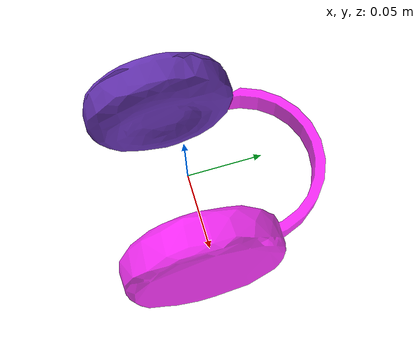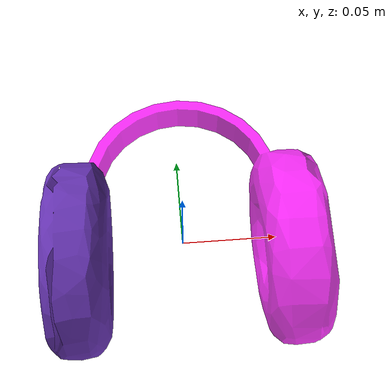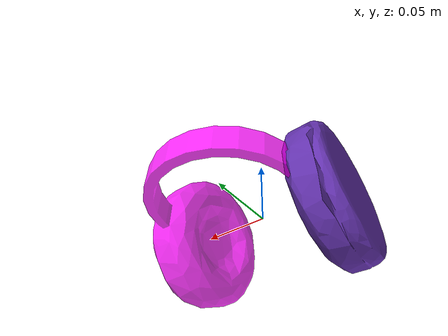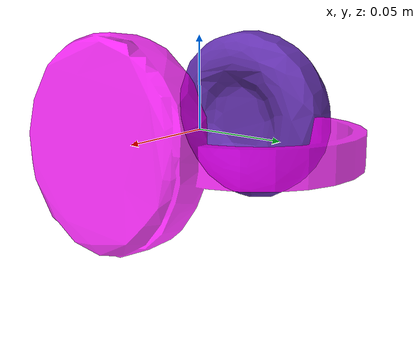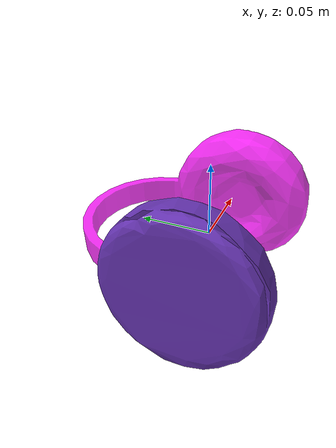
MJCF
<?xml version="1.0" encoding="utf-8"?>
<mujoco model="top_watertight_tiny">

  <asset>

    <mesh file="top_watertight_tiny.obj"/>

    <mesh file="top_watertight_tiny_collision_0.obj"/>

    <mesh file="top_watertight_tiny_collision_1.obj"/>

    <mesh file="top_watertight_tiny_collision_2.obj"/>

    <mesh file="top_watertight_tiny_collision_3.obj"/>

    <mesh file="top_watertight_tiny_collision_4.obj"/>

    <mesh file="top_watertight_tiny_collision_5.obj"/>

    <mesh file="top_watertight_tiny_collision_6.obj"/>

    <mesh file="top_watertight_tiny_collision_7.obj"/>

    <mesh file="top_watertight_tiny_collision_8.obj"/>

    <mesh file="top_watertight_tiny_collision_9.obj"/>

    <mesh file="top_watertight_tiny_collision_10.obj"/>

    <mesh file="top_watertight_tiny_collision_11.obj"/>

    <mesh file="top_watertight_tiny_collision_12.obj"/>

    <mesh file="top_watertight_tiny_collision_13.obj"/>

    <mesh file="top_watertight_tiny_collision_14.obj"/>

    <mesh file="top_watertight_tiny_collision_15.obj"/>

    <mesh file="top_watertight_tiny_collision_16.obj"/>

    <mesh file="top_watertight_tiny_collision_17.obj"/>

    <mesh file="top_watertight_tiny_collision_18.obj"/>

    <mesh file="top_watertight_tiny_collision_19.obj"/>

    <mesh file="top_watertight_tiny_collision_20.obj"/>

    <mesh file="top_watertight_tiny_collision_21.obj"/>

    <mesh file="top_watertight_tiny_collision_22.obj"/>

    <mesh file="top_watertight_tiny_collision_23.obj"/>

    <mesh file="top_watertight_tiny_collision_24.obj"/>

    <mesh file="top_watertight_tiny_collision_25.obj"/>

    <mesh file="top_watertight_tiny_collision_26.obj"/>

    <mesh file="top_watertight_tiny_collision_27.obj"/>

    <mesh file="top_watertight_tiny_collision_28.obj"/>

    <mesh file="top_watertight_tiny_collision_29.obj"/>

    <mesh file="top_watertight_tiny_collision_30.obj"/>

    <mesh file="top_watertight_tiny_collision_31.obj"/>

    <mesh file="top_watertight_tiny_collision_32.obj"/>

    <mesh file="top_watertight_tiny_collision_33.obj"/>

    <mesh file="top_watertight_tiny_collision_34.obj"/>

    <mesh file="top_watertight_tiny_collision_35.obj"/>

    <mesh file="top_watertight_tiny_collision_36.obj"/>

    <mesh file="top_watertight_tiny_collision_37.obj"/>

    <mesh file="top_watertight_tiny_collision_38.obj"/>

    <mesh file="top_watertight_tiny_collision_39.obj"/>

    <mesh file="top_watertight_tiny_collision_40.obj"/>

    <mesh file="top_watertight_tiny_collision_41.obj"/>

    <mesh file="top_watertight_tiny_collision_42.obj"/>

    <mesh file="top_watertight_tiny_collision_43.obj"/>

    <mesh file="top_watertight_tiny_collision_44.obj"/>

    <mesh file="top_watertight_tiny_collision_45.obj"/>

    <mesh file="top_watertight_tiny_collision_46.obj"/>

    <mesh file="top_watertight_tiny_collision_47.obj"/>

    <mesh file="top_watertight_tiny_collision_48.obj"/>

    <mesh file="top_watertight_tiny_collision_49.obj"/>

    <mesh file="top_watertight_tiny_collision_50.obj"/>

    <mesh file="top_watertight_tiny_collision_51.obj"/>

    <mesh file="top_watertight_tiny_collision_52.obj"/>

    <mesh file="top_watertight_tiny_collision_53.obj"/>

    <mesh file="top_watertight_tiny_collision_54.obj"/>

    <mesh file="top_watertight_tiny_collision_55.obj"/>

    <mesh file="top_watertight_tiny_collision_56.obj"/>

    <mesh file="top_watertight_tiny_collision_57.obj"/>

    <mesh file="top_watertight_tiny_collision_58.obj"/>

    <mesh file="top_watertight_tiny_collision_59.obj"/>

    <mesh file="top_watertight_tiny_collision_60.obj"/>

    <mesh file="top_watertight_tiny_collision_61.obj"/>

    <mesh file="top_watertight_tiny_collision_62.obj"/>

    <mesh file="top_watertight_tiny_collision_63.obj"/>

    <mesh file="top_watertight_tiny_collision_64.obj"/>

    <mesh file="top_watertight_tiny_collision_65.obj"/>

    <mesh file="top_watertight_tiny_collision_66.obj"/>

    <mesh file="top_watertight_tiny_collision_67.obj"/>

    <mesh file="top_watertight_tiny_collision_68.obj"/>

    <mesh file="top_watertight_tiny_collision_69.obj"/>

    <mesh file="top_watertight_tiny_collision_70.obj"/>

    <mesh file="top_watertight_tiny_collision_71.obj"/>

    <mesh file="top_watertight_tiny_collision_72.obj"/>

    <mesh file="top_watertight_tiny_collision_73.obj"/>

    <mesh file="top_watertight_tiny_collision_74.obj"/>

    <mesh file="top_watertight_tiny_collision_75.obj"/>

    <mesh file="top_watertight_tiny_collision_76.obj"/>

    <mesh file="top_watertight_tiny_collision_77.obj"/>

    <mesh file="top_watertight_tiny_collision_78.obj"/>

    <mesh file="top_watertight_tiny_collision_79.obj"/>

    <mesh file="top_watertight_tiny_collision_80.obj"/>

    <mesh file="top_watertight_tiny_collision_81.obj"/>

    <mesh file="top_watertight_tiny_collision_82.obj"/>

    <mesh file="top_watertight_tiny_collision_83.obj"/>

    <mesh file="top_watertight_tiny_collision_84.obj"/>

    <mesh file="top_watertight_tiny_collision_85.obj"/>

    <mesh file="top_watertight_tiny_collision_86.obj"/>

    <mesh file="top_watertight_tiny_collision_87.obj"/>

    <mesh file="top_watertight_tiny_collision_88.obj"/>

    <mesh file="top_watertight_tiny_collision_89.obj"/>

    <mesh file="top_watertight_tiny_collision_90.obj"/>

    <mesh file="top_watertight_tiny_collision_91.obj"/>

    <mesh file="top_watertight_tiny_collision_92.obj"/>

    <mesh file="top_watertight_tiny_collision_93.obj"/>

    <mesh file="top_watertight_tiny_collision_94.obj"/>

    <mesh file="top_watertight_tiny_collision_95.obj"/>

    <mesh file="top_watertight_tiny_collision_96.obj"/>

    <mesh file="top_watertight_tiny_collision_97.obj"/>

    <mesh file="top_watertight_tiny_collision_98.obj"/>

    <mesh file="top_watertight_tiny_collision_99.obj"/>

    <mesh file="top_watertight_tiny_collision_100.obj"/>

    <mesh file="top_watertight_tiny_collision_101.obj"/>

    <mesh file="bottom_watertight_tiny.obj"/>

    <mesh file="bottom_watertight_tiny_collision_0.obj"/>

    <mesh file="bottom_watertight_tiny_collision_1.obj"/>

    <mesh file="bottom_watertight_tiny_collision_2.obj"/>

    <mesh file="bottom_watertight_tiny_collision_3.obj"/>

    <mesh file="bottom_watertight_tiny_collision_4.obj"/>

    <mesh file="bottom_watertight_tiny_collision_5.obj"/>

    <mesh file="bottom_watertight_tiny_collision_6.obj"/>

    <mesh file="bottom_watertight_tiny_collision_7.obj"/>

    <mesh file="bottom_watertight_tiny_collision_8.obj"/>

    <mesh file="bottom_watertight_tiny_collision_9.obj"/>

    <mesh file="bottom_watertight_tiny_collision_10.obj"/>

    <mesh file="bottom_watertight_tiny_collision_11.obj"/>

    <mesh file="bottom_watertight_tiny_collision_12.obj"/>

    <mesh file="bottom_watertight_tiny_collision_13.obj"/>

    <mesh file="bottom_watertight_tiny_collision_14.obj"/>

    <mesh file="bottom_watertight_tiny_collision_15.obj"/>

    <mesh file="bottom_watertight_tiny_collision_16.obj"/>

    <mesh file="bottom_watertight_tiny_collision_17.obj"/>

    <mesh file="bottom_watertight_tiny_collision_18.obj"/>

    <mesh file="bottom_watertight_tiny_collision_19.obj"/>

    <mesh file="bottom_watertight_tiny_collision_20.obj"/>

    <mesh file="bottom_watertight_tiny_collision_21.obj"/>

    <mesh file="bottom_watertight_tiny_collision_22.obj"/>

    <mesh file="bottom_watertight_tiny_collision_23.obj"/>

    <mesh file="bottom_watertight_tiny_collision_24.obj"/>

    <mesh file="bottom_watertight_tiny_collision_25.obj"/>

    <mesh file="bottom_watertight_tiny_collision_26.obj"/>

    <mesh file="bottom_watertight_tiny_collision_27.obj"/>

    <mesh file="bottom_watertight_tiny_collision_28.obj"/>

    <mesh file="bottom_watertight_tiny_collision_29.obj"/>

    <mesh file="bottom_watertight_tiny_collision_30.obj"/>

    <mesh file="bottom_watertight_tiny_collision_31.obj"/>

    <mesh file="bottom_watertight_tiny_collision_32.obj"/>

    <mesh file="bottom_watertight_tiny_collision_33.obj"/>

    <mesh file="bottom_watertight_tiny_collision_34.obj"/>

    <mesh file="bottom_watertight_tiny_collision_35.obj"/>

    <mesh file="bottom_watertight_tiny_collision_36.obj"/>

    <mesh file="bottom_watertight_tiny_collision_37.obj"/>

    <mesh file="bottom_watertight_tiny_collision_38.obj"/>

    <mesh file="bottom_watertight_tiny_collision_39.obj"/>

    <mesh file="bottom_watertight_tiny_collision_40.obj"/>

    <mesh file="bottom_watertight_tiny_collision_41.obj"/>

    <mesh file="bottom_watertight_tiny_collision_42.obj"/>

    <mesh file="bottom_watertight_tiny_collision_43.obj"/>

    <mesh file="bottom_watertight_tiny_collision_44.obj"/>

    <mesh file="bottom_watertight_tiny_collision_45.obj"/>

    <mesh file="bottom_watertight_tiny_collision_46.obj"/>

    <mesh file="bottom_watertight_tiny_collision_47.obj"/>

    <mesh file="bottom_watertight_tiny_collision_48.obj"/>

    <mesh file="bottom_watertight_tiny_collision_49.obj"/>

    <mesh file="bottom_watertight_tiny_collision_50.obj"/>

    <mesh file="bottom_watertight_tiny_collision_51.obj"/>

    <mesh file="bottom_watertight_tiny_collision_52.obj"/>

    <mesh file="bottom_watertight_tiny_collision_53.obj"/>

    <mesh file="bottom_watertight_tiny_collision_54.obj"/>

    <mesh file="bottom_watertight_tiny_collision_55.obj"/>

    <mesh file="bottom_watertight_tiny_collision_56.obj"/>

    <mesh file="bottom_watertight_tiny_collision_57.obj"/>

    <mesh file="bottom_watertight_tiny_collision_58.obj"/>

    <mesh file="bottom_watertight_tiny_collision_59.obj"/>

    <mesh file="bottom_watertight_tiny_collision_60.obj"/>

    <mesh file="bottom_watertight_tiny_collision_61.obj"/>

    <mesh file="bottom_watertight_tiny_collision_62.obj"/>

    <mesh file="bottom_watertight_tiny_collision_63.obj"/>

    <mesh file="bottom_watertight_tiny_collision_64.obj"/>

    <mesh file="bottom_watertight_tiny_collision_65.obj"/>

    <mesh file="bottom_watertight_tiny_collision_66.obj"/>

    <mesh file="bottom_watertight_tiny_collision_67.obj"/>

    <mesh file="bottom_watertight_tiny_collision_68.obj"/>

    <mesh file="bottom_watertight_tiny_collision_69.obj"/>

    <mesh file="bottom_watertight_tiny_collision_70.obj"/>

    <mesh file="bottom_watertight_tiny_collision_71.obj"/>

    <mesh file="bottom_watertight_tiny_collision_72.obj"/>

    <mesh file="bottom_watertight_tiny_collision_73.obj"/>

    <mesh file="bottom_watertight_tiny_collision_74.obj"/>

    <mesh file="bottom_watertight_tiny_collision_75.obj"/>

    <mesh file="bottom_watertight_tiny_collision_76.obj"/>

  </asset>

  <worldbody>

    <body name="top_watertight_tiny">

      <freejoint/>

      <geom mesh="top_watertight_tiny" group="2" type="mesh" rgba="0.4 0.2 0.7 1" contype="0" conaffinity="0" solimp="0.90 0.95 0.001" solref="0.02 1.0" density="100" friction="0.95 0.4 0.3"/>

      <geom mesh="top_watertight_tiny_collision_0" rgba="0.766062738003448 0.5244748164000888 0.32984674510797074 1" group="3" type="mesh" solimp="0.90 0.95 0.001" solref="0.02 1.0" density="100" friction="0.95 0.4 0.3"/>

      <geom mesh="top_watertight_tiny_collision_1" rgba="0.40572860502263985 0.2552929073115291 0.11887064724577245 1" group="3" type="mesh" solimp="0.90 0.95 0.001" solref="0.02 1.0" density="100" friction="0.95 0.4 0.3"/>

      <geom mesh="top_watertight_tiny_collision_2" rgba="0.9670536360694395 0.08168789633020856 0.6553193699167701 1" group="3" type="mesh" solimp="0.90 0.95 0.001" solref="0.02 1.0" density="100" friction="0.95 0.4 0.3"/>

      <geom mesh="top_watertight_tiny_collision_3" rgba="0.9840877347133452 0.27295959893743105 0.29552680026406775 1" group="3" type="mesh" solimp="0.90 0.95 0.001" solref="0.02 1.0" density="100" friction="0.95 0.4 0.3"/>

      <geom mesh="top_watertight_tiny_collision_4" rgba="0.5039278483407091 0.2234415807497847 0.10487740700408654 1" group="3" type="mesh" solimp="0.90 0.95 0.001" solref="0.02 1.0" density="100" friction="0.95 0.4 0.3"/>

      <geom mesh="top_watertight_tiny_collision_5" rgba="0.2505801559534395 0.017056400771879976 0.2974394566987735 1" group="3" type="mesh" solimp="0.90 0.95 0.001" solref="0.02 1.0" density="100" friction="0.95 0.4 0.3"/>

      <geom mesh="top_watertight_tiny_collision_6" rgba="0.7364644318811023 0.9440554966382596 0.5542062362356843 1" group="3" type="mesh" solimp="0.90 0.95 0.001" solref="0.02 1.0" density="100" friction="0.95 0.4 0.3"/>

      <geom mesh="top_watertight_tiny_collision_7" rgba="0.81042568269233 0.8524555680318481 0.551307093401827 1" group="3" type="mesh" solimp="0.90 0.95 0.001" solref="0.02 1.0" density="100" friction="0.95 0.4 0.3"/>

      <geom mesh="top_watertight_tiny_collision_8" rgba="0.18520892535198963 0.6510053850307842 0.6937170622605244 1" group="3" type="mesh" solimp="0.90 0.95 0.001" solref="0.02 1.0" density="100" friction="0.95 0.4 0.3"/>

      <geom mesh="top_watertight_tiny_collision_9" rgba="0.03982199266981146 0.7400070166337089 0.45730844449198926 1" group="3" type="mesh" solimp="0.90 0.95 0.001" solref="0.02 1.0" density="100" friction="0.95 0.4 0.3"/>

      <geom mesh="top_watertight_tiny_collision_10" rgba="0.12011622826820911 0.9544589102710332 0.311416676180602 1" group="3" type="mesh" solimp="0.90 0.95 0.001" solref="0.02 1.0" density="100" friction="0.95 0.4 0.3"/>

      <geom mesh="top_watertight_tiny_collision_11" rgba="0.16702232658001825 0.4874663874547335 0.030343762648396444 1" group="3" type="mesh" solimp="0.90 0.95 0.001" solref="0.02 1.0" density="100" friction="0.95 0.4 0.3"/>

      <geom mesh="top_watertight_tiny_collision_12" rgba="0.925926706614749 0.9401390433322846 0.9877394157742075 1" group="3" type="mesh" solimp="0.90 0.95 0.001" solref="0.02 1.0" density="100" friction="0.95 0.4 0.3"/>

      <geom mesh="top_watertight_tiny_collision_13" rgba="0.4638442382927238 0.38000940794839355 0.6398130340126214 1" group="3" type="mesh" solimp="0.90 0.95 0.001" solref="0.02 1.0" density="100" friction="0.95 0.4 0.3"/>

      <geom mesh="top_watertight_tiny_collision_14" rgba="0.07637061457570749 0.9013816749399639 0.9460388206459165 1" group="3" type="mesh" solimp="0.90 0.95 0.001" solref="0.02 1.0" density="100" friction="0.95 0.4 0.3"/>

      <geom mesh="top_watertight_tiny_collision_15" rgba="0.7905031409925123 0.7455078519697366 0.10978817530490736 1" group="3" type="mesh" solimp="0.90 0.95 0.001" solref="0.02 1.0" density="100" friction="0.95 0.4 0.3"/>

      <geom mesh="top_watertight_tiny_collision_16" rgba="0.2528065189690465 0.502162637809156 0.5364191260206278 1" group="3" type="mesh" solimp="0.90 0.95 0.001" solref="0.02 1.0" density="100" friction="0.95 0.4 0.3"/>

      <geom mesh="top_watertight_tiny_collision_17" rgba="0.48266309587370504 0.009664005804444264 0.8107484817534605 1" group="3" type="mesh" solimp="0.90 0.95 0.001" solref="0.02 1.0" density="100" friction="0.95 0.4 0.3"/>

      <geom mesh="top_watertight_tiny_collision_18" rgba="0.6902023715456127 0.4495307690829504 0.3946432736682073 1" group="3" type="mesh" solimp="0.90 0.95 0.001" solref="0.02 1.0" density="100" friction="0.95 0.4 0.3"/>

      <geom mesh="top_watertight_tiny_collision_19" rgba="0.07117386187144537 0.04658704767706112 0.22328621161542694 1" group="3" type="mesh" solimp="0.90 0.95 0.001" solref="0.02 1.0" density="100" friction="0.95 0.4 0.3"/>

      <geom mesh="top_watertight_tiny_collision_20" rgba="0.5648737339010019 0.05794306002505101 0.23502416672065185 1" group="3" type="mesh" solimp="0.90 0.95 0.001" solref="0.02 1.0" density="100" friction="0.95 0.4 0.3"/>

      <geom mesh="top_watertight_tiny_collision_21" rgba="0.4396478908557834 0.8404456798825608 0.014870428479449305 1" group="3" type="mesh" solimp="0.90 0.95 0.001" solref="0.02 1.0" density="100" friction="0.95 0.4 0.3"/>

      <geom mesh="top_watertight_tiny_collision_22" rgba="0.9880012464197002 0.842399611553681 0.10380369623136565 1" group="3" type="mesh" solimp="0.90 0.95 0.001" solref="0.02 1.0" density="100" friction="0.95 0.4 0.3"/>

      <geom mesh="top_watertight_tiny_collision_23" rgba="0.19102361502996745 0.5213664725966956 0.6555746861004302 1" group="3" type="mesh" solimp="0.90 0.95 0.001" solref="0.02 1.0" density="100" friction="0.95 0.4 0.3"/>

      <geom mesh="top_watertight_tiny_collision_24" rgba="0.31610183698002714 0.48811532062518237 0.9643588175072634 1" group="3" type="mesh" solimp="0.90 0.95 0.001" solref="0.02 1.0" density="100" friction="0.95 0.4 0.3"/>

      <geom mesh="top_watertight_tiny_collision_25" rgba="0.49521002458138874 0.01393613260356541 0.9743457692730925 1" group="3" type="mesh" solimp="0.90 0.95 0.001" solref="0.02 1.0" density="100" friction="0.95 0.4 0.3"/>

      <geom mesh="top_watertight_tiny_collision_26" rgba="0.21657272384571646 0.09261496547618697 0.18577644264752524 1" group="3" type="mesh" solimp="0.90 0.95 0.001" solref="0.02 1.0" density="100" friction="0.95 0.4 0.3"/>

      <geom mesh="top_watertight_tiny_collision_27" rgba="0.7279818359824315 0.5998763470111916 0.9096653241005807 1" group="3" type="mesh" solimp="0.90 0.95 0.001" solref="0.02 1.0" density="100" friction="0.95 0.4 0.3"/>

      <geom mesh="top_watertight_tiny_collision_28" rgba="0.28053288448605607 0.828501973409408 0.7963958720897343 1" group="3" type="mesh" solimp="0.90 0.95 0.001" solref="0.02 1.0" density="100" friction="0.95 0.4 0.3"/>

      <geom mesh="top_watertight_tiny_collision_29" rgba="0.2682587504127536 0.40919023378275 0.1052492031150356 1" group="3" type="mesh" solimp="0.90 0.95 0.001" solref="0.02 1.0" density="100" friction="0.95 0.4 0.3"/>

      <geom mesh="top_watertight_tiny_collision_30" rgba="0.031891019959443656 0.4917932020808724 0.7194528210370378 1" group="3" type="mesh" solimp="0.90 0.95 0.001" solref="0.02 1.0" density="100" friction="0.95 0.4 0.3"/>

      <geom mesh="top_watertight_tiny_collision_31" rgba="0.7061310549969372 0.11331235357441083 0.4423315314571755 1" group="3" type="mesh" solimp="0.90 0.95 0.001" solref="0.02 1.0" density="100" friction="0.95 0.4 0.3"/>

      <geom mesh="top_watertight_tiny_collision_32" rgba="0.25550175254240803 0.915314137507694 0.6072643730984377 1" group="3" type="mesh" solimp="0.90 0.95 0.001" solref="0.02 1.0" density="100" friction="0.95 0.4 0.3"/>

      <geom mesh="top_watertight_tiny_collision_33" rgba="0.36076488262306394 0.737822019497504 0.4257168902785081 1" group="3" type="mesh" solimp="0.90 0.95 0.001" solref="0.02 1.0" density="100" friction="0.95 0.4 0.3"/>

      <geom mesh="top_watertight_tiny_collision_34" rgba="0.1961613336822734 0.9885047819959446 0.0930364469811189 1" group="3" type="mesh" solimp="0.90 0.95 0.001" solref="0.02 1.0" density="100" friction="0.95 0.4 0.3"/>

      <geom mesh="top_watertight_tiny_collision_35" rgba="0.08386802840526597 0.6334524043926351 0.4466166407382841 1" group="3" type="mesh" solimp="0.90 0.95 0.001" solref="0.02 1.0" density="100" friction="0.95 0.4 0.3"/>

      <geom mesh="top_watertight_tiny_collision_36" rgba="0.7118508177444862 0.04546626271104526 0.9779500720098097 1" group="3" type="mesh" solimp="0.90 0.95 0.001" solref="0.02 1.0" density="100" friction="0.95 0.4 0.3"/>

      <geom mesh="top_watertight_tiny_collision_37" rgba="0.622769938492074 0.3632181524992102 0.3830075725089892 1" group="3" type="mesh" solimp="0.90 0.95 0.001" solref="0.02 1.0" density="100" friction="0.95 0.4 0.3"/>

      <geom mesh="top_watertight_tiny_collision_38" rgba="0.5934329483810608 0.3765499892055243 0.38523918167735816 1" group="3" type="mesh" solimp="0.90 0.95 0.001" solref="0.02 1.0" density="100" friction="0.95 0.4 0.3"/>

      <geom mesh="top_watertight_tiny_collision_39" rgba="0.5434592996019427 0.5391082453240993 0.6302395043787604 1" group="3" type="mesh" solimp="0.90 0.95 0.001" solref="0.02 1.0" density="100" friction="0.95 0.4 0.3"/>

      <geom mesh="top_watertight_tiny_collision_40" rgba="0.5697165720536764 0.9706201333402197 0.249458687547101 1" group="3" type="mesh" solimp="0.90 0.95 0.001" solref="0.02 1.0" density="100" friction="0.95 0.4 0.3"/>

      <geom mesh="top_watertight_tiny_collision_41" rgba="0.07071623207355604 0.6014331105328383 0.7905301260631655 1" group="3" type="mesh" solimp="0.90 0.95 0.001" solref="0.02 1.0" density="100" friction="0.95 0.4 0.3"/>

      <geom mesh="top_watertight_tiny_collision_42" rgba="0.20455370119160432 0.23808799231285005 0.24719929995518108 1" group="3" type="mesh" solimp="0.90 0.95 0.001" solref="0.02 1.0" density="100" friction="0.95 0.4 0.3"/>

      <geom mesh="top_watertight_tiny_collision_43" rgba="0.3073410307040463 0.6263163384976749 0.44503859653351097 1" group="3" type="mesh" solimp="0.90 0.95 0.001" solref="0.02 1.0" density="100" friction="0.95 0.4 0.3"/>

      <geom mesh="top_watertight_tiny_collision_44" rgba="0.20344256647293657 0.09460162057505683 0.98103556485487 1" group="3" type="mesh" solimp="0.90 0.95 0.001" solref="0.02 1.0" density="100" friction="0.95 0.4 0.3"/>

      <geom mesh="top_watertight_tiny_collision_45" rgba="0.007036689713350919 0.07215069853938394 0.6368103837627643 1" group="3" type="mesh" solimp="0.90 0.95 0.001" solref="0.02 1.0" density="100" friction="0.95 0.4 0.3"/>

      <geom mesh="top_watertight_tiny_collision_46" rgba="0.5968774594864412 0.8894835406489247 0.9482924963913232 1" group="3" type="mesh" solimp="0.90 0.95 0.001" solref="0.02 1.0" density="100" friction="0.95 0.4 0.3"/>

      <geom mesh="top_watertight_tiny_collision_47" rgba="0.09192115948937962 0.14768145400908383 0.0720050996219489 1" group="3" type="mesh" solimp="0.90 0.95 0.001" solref="0.02 1.0" density="100" friction="0.95 0.4 0.3"/>

      <geom mesh="top_watertight_tiny_collision_48" rgba="0.6072222051483686 0.6055076811407446 0.6900966214340781 1" group="3" type="mesh" solimp="0.90 0.95 0.001" solref="0.02 1.0" density="100" friction="0.95 0.4 0.3"/>

      <geom mesh="top_watertight_tiny_collision_49" rgba="0.04640364395568852 0.9466460078442872 0.24601079275307491 1" group="3" type="mesh" solimp="0.90 0.95 0.001" solref="0.02 1.0" density="100" friction="0.95 0.4 0.3"/>

      <geom mesh="top_watertight_tiny_collision_50" rgba="0.9926826740678116 0.4998269150089515 0.570667213414746 1" group="3" type="mesh" solimp="0.90 0.95 0.001" solref="0.02 1.0" density="100" friction="0.95 0.4 0.3"/>

      <geom mesh="top_watertight_tiny_collision_51" rgba="0.7541408838825524 0.43457935948710735 0.9850185176437907 1" group="3" type="mesh" solimp="0.90 0.95 0.001" solref="0.02 1.0" density="100" friction="0.95 0.4 0.3"/>

      <geom mesh="top_watertight_tiny_collision_52" rgba="0.8625277026637512 0.463273546908229 0.6892786728623745 1" group="3" type="mesh" solimp="0.90 0.95 0.001" solref="0.02 1.0" density="100" friction="0.95 0.4 0.3"/>

      <geom mesh="top_watertight_tiny_collision_53" rgba="0.31226790768247603 0.5448957107150176 0.32215540861781455 1" group="3" type="mesh" solimp="0.90 0.95 0.001" solref="0.02 1.0" density="100" friction="0.95 0.4 0.3"/>

      <geom mesh="top_watertight_tiny_collision_54" rgba="0.5611037777207905 0.42002200982636895 0.7247564701869674 1" group="3" type="mesh" solimp="0.90 0.95 0.001" solref="0.02 1.0" density="100" friction="0.95 0.4 0.3"/>

      <geom mesh="top_watertight_tiny_collision_55" rgba="0.6214403913014905 0.5211280258351159 0.02565585170183382 1" group="3" type="mesh" solimp="0.90 0.95 0.001" solref="0.02 1.0" density="100" friction="0.95 0.4 0.3"/>

      <geom mesh="top_watertight_tiny_collision_56" rgba="0.8096502686321072 0.15962423198506304 0.7410544344519481 1" group="3" type="mesh" solimp="0.90 0.95 0.001" solref="0.02 1.0" density="100" friction="0.95 0.4 0.3"/>

      <geom mesh="top_watertight_tiny_collision_57" rgba="0.8384323661247944 0.5925970691280599 0.44228500386991787 1" group="3" type="mesh" solimp="0.90 0.95 0.001" solref="0.02 1.0" density="100" friction="0.95 0.4 0.3"/>

      <geom mesh="top_watertight_tiny_collision_58" rgba="0.7818943473942465 0.5400685159215334 0.24589594366431167 1" group="3" type="mesh" solimp="0.90 0.95 0.001" solref="0.02 1.0" density="100" friction="0.95 0.4 0.3"/>

      <geom mesh="top_watertight_tiny_collision_59" rgba="0.4728134375964608 0.1915563981510522 0.2844912731592302 1" group="3" type="mesh" solimp="0.90 0.95 0.001" solref="0.02 1.0" density="100" friction="0.95 0.4 0.3"/>

      <geom mesh="top_watertight_tiny_collision_60" rgba="0.38370445710004253 0.7598172585820234 0.6127347866609297 1" group="3" type="mesh" solimp="0.90 0.95 0.001" solref="0.02 1.0" density="100" friction="0.95 0.4 0.3"/>

      <geom mesh="top_watertight_tiny_collision_61" rgba="0.14425926989740345 0.5070797881950182 0.7586004573133909 1" group="3" type="mesh" solimp="0.90 0.95 0.001" solref="0.02 1.0" density="100" friction="0.95 0.4 0.3"/>

      <geom mesh="top_watertight_tiny_collision_62" rgba="0.777563853229391 0.24710160615934895 0.5665668260271912 1" group="3" type="mesh" solimp="0.90 0.95 0.001" solref="0.02 1.0" density="100" friction="0.95 0.4 0.3"/>

      <geom mesh="top_watertight_tiny_collision_63" rgba="0.7680113777679826 0.6529091943820098 0.3849261394034945 1" group="3" type="mesh" solimp="0.90 0.95 0.001" solref="0.02 1.0" density="100" friction="0.95 0.4 0.3"/>

      <geom mesh="top_watertight_tiny_collision_64" rgba="0.9284855679707877 0.4339629879657867 0.9739937947755206 1" group="3" type="mesh" solimp="0.90 0.95 0.001" solref="0.02 1.0" density="100" friction="0.95 0.4 0.3"/>

      <geom mesh="top_watertight_tiny_collision_65" rgba="0.5106582197535642 0.5671929360599725 0.2817387721771073 1" group="3" type="mesh" solimp="0.90 0.95 0.001" solref="0.02 1.0" density="100" friction="0.95 0.4 0.3"/>

      <geom mesh="top_watertight_tiny_collision_66" rgba="0.4799028166889082 0.34754185959079364 0.10608907113621546 1" group="3" type="mesh" solimp="0.90 0.95 0.001" solref="0.02 1.0" density="100" friction="0.95 0.4 0.3"/>

      <geom mesh="top_watertight_tiny_collision_67" rgba="0.11880076091281244 0.36962621823474584 0.49758739435182264 1" group="3" type="mesh" solimp="0.90 0.95 0.001" solref="0.02 1.0" density="100" friction="0.95 0.4 0.3"/>

      <geom mesh="top_watertight_tiny_collision_68" rgba="0.194121376116147 0.00973883137517173 0.9863274193465841 1" group="3" type="mesh" solimp="0.90 0.95 0.001" solref="0.02 1.0" density="100" friction="0.95 0.4 0.3"/>

      <geom mesh="top_watertight_tiny_collision_69" rgba="0.03286881956047638 0.8670640149306099 0.4856455922882572 1" group="3" type="mesh" solimp="0.90 0.95 0.001" solref="0.02 1.0" density="100" friction="0.95 0.4 0.3"/>

      <geom mesh="top_watertight_tiny_collision_70" rgba="0.46914902196185504 0.9694085669585275 0.7086259283374221 1" group="3" type="mesh" solimp="0.90 0.95 0.001" solref="0.02 1.0" density="100" friction="0.95 0.4 0.3"/>

      <geom mesh="top_watertight_tiny_collision_71" rgba="0.034272224434495735 0.4029961514515893 0.024987731070421404 1" group="3" type="mesh" solimp="0.90 0.95 0.001" solref="0.02 1.0" density="100" friction="0.95 0.4 0.3"/>

      <geom mesh="top_watertight_tiny_collision_72" rgba="0.7179747491900271 0.3129834049308501 0.07674816624276748 1" group="3" type="mesh" solimp="0.90 0.95 0.001" solref="0.02 1.0" density="100" friction="0.95 0.4 0.3"/>

      <geom mesh="top_watertight_tiny_collision_73" rgba="0.5411831721589564 0.345582202520308 0.18504432841262797 1" group="3" type="mesh" solimp="0.90 0.95 0.001" solref="0.02 1.0" density="100" friction="0.95 0.4 0.3"/>

      <geom mesh="top_watertight_tiny_collision_74" rgba="0.39959305663876454 0.26607160041944533 0.6481987635796882 1" group="3" type="mesh" solimp="0.90 0.95 0.001" solref="0.02 1.0" density="100" friction="0.95 0.4 0.3"/>

      <geom mesh="top_watertight_tiny_collision_75" rgba="0.716609137450175 0.020970301525906287 0.9380308454658973 1" group="3" type="mesh" solimp="0.90 0.95 0.001" solref="0.02 1.0" density="100" friction="0.95 0.4 0.3"/>

      <geom mesh="top_watertight_tiny_collision_76" rgba="0.9285606611486685 0.356202831923795 0.8289396615898165 1" group="3" type="mesh" solimp="0.90 0.95 0.001" solref="0.02 1.0" density="100" friction="0.95 0.4 0.3"/>

      <geom mesh="top_watertight_tiny_collision_77" rgba="0.8422903370867656 0.6879233433163012 0.3430338251249765 1" group="3" type="mesh" solimp="0.90 0.95 0.001" solref="0.02 1.0" density="100" friction="0.95 0.4 0.3"/>

      <geom mesh="top_watertight_tiny_collision_78" rgba="0.5833878553742299 0.39008369559454603 0.2714817811896413 1" group="3" type="mesh" solimp="0.90 0.95 0.001" solref="0.02 1.0" density="100" friction="0.95 0.4 0.3"/>

      <geom mesh="top_watertight_tiny_collision_79" rgba="0.5347311951560618 0.7148515240601688 0.28439338352370025 1" group="3" type="mesh" solimp="0.90 0.95 0.001" solref="0.02 1.0" density="100" friction="0.95 0.4 0.3"/>

      <geom mesh="top_watertight_tiny_collision_80" rgba="0.8466955467936178 0.9607677596417027 0.8943622141427606 1" group="3" type="mesh" solimp="0.90 0.95 0.001" solref="0.02 1.0" density="100" friction="0.95 0.4 0.3"/>

      <geom mesh="top_watertight_tiny_collision_81" rgba="0.6735377366489573 0.7236801293502225 0.1442810202003878 1" group="3" type="mesh" solimp="0.90 0.95 0.001" solref="0.02 1.0" density="100" friction="0.95 0.4 0.3"/>

      <geom mesh="top_watertight_tiny_collision_82" rgba="0.6729775795046256 0.46408411230140856 0.28206064030493805 1" group="3" type="mesh" solimp="0.90 0.95 0.001" solref="0.02 1.0" density="100" friction="0.95 0.4 0.3"/>

      <geom mesh="top_watertight_tiny_collision_83" rgba="0.9252873923866315 0.038511566794153684 0.5330264255953352 1" group="3" type="mesh" solimp="0.90 0.95 0.001" solref="0.02 1.0" density="100" friction="0.95 0.4 0.3"/>

      <geom mesh="top_watertight_tiny_collision_84" rgba="0.534610885410024 0.23060298778214017 0.26686772096409417 1" group="3" type="mesh" solimp="0.90 0.95 0.001" solref="0.02 1.0" density="100" friction="0.95 0.4 0.3"/>

      <geom mesh="top_watertight_tiny_collision_85" rgba="0.15182260047606622 0.8970640846944409 0.14801059759306745 1" group="3" type="mesh" solimp="0.90 0.95 0.001" solref="0.02 1.0" density="100" friction="0.95 0.4 0.3"/>

      <geom mesh="top_watertight_tiny_collision_86" rgba="0.3278849006067085 0.5488368530963298 0.585948138133389 1" group="3" type="mesh" solimp="0.90 0.95 0.001" solref="0.02 1.0" density="100" friction="0.95 0.4 0.3"/>

      <geom mesh="top_watertight_tiny_collision_87" rgba="0.7356578369975116 0.6339404271464695 0.37323297965588653 1" group="3" type="mesh" solimp="0.90 0.95 0.001" solref="0.02 1.0" density="100" friction="0.95 0.4 0.3"/>

      <geom mesh="top_watertight_tiny_collision_88" rgba="0.29901182213301913 0.6400853454797043 0.7730882651308508 1" group="3" type="mesh" solimp="0.90 0.95 0.001" solref="0.02 1.0" density="100" friction="0.95 0.4 0.3"/>

      <geom mesh="top_watertight_tiny_collision_89" rgba="0.16183281859202148 0.4312639711328502 0.7584859677498301 1" group="3" type="mesh" solimp="0.90 0.95 0.001" solref="0.02 1.0" density="100" friction="0.95 0.4 0.3"/>

      <geom mesh="top_watertight_tiny_collision_90" rgba="0.9596912428200661 0.4736789921775223 0.7666473731140382 1" group="3" type="mesh" solimp="0.90 0.95 0.001" solref="0.02 1.0" density="100" friction="0.95 0.4 0.3"/>

      <geom mesh="top_watertight_tiny_collision_91" rgba="0.7988064842880859 0.11451514509012817 0.6900634634371601 1" group="3" type="mesh" solimp="0.90 0.95 0.001" solref="0.02 1.0" density="100" friction="0.95 0.4 0.3"/>

      <geom mesh="top_watertight_tiny_collision_92" rgba="0.5376938510797705 0.2469375823704837 0.836310137785893 1" group="3" type="mesh" solimp="0.90 0.95 0.001" solref="0.02 1.0" density="100" friction="0.95 0.4 0.3"/>

      <geom mesh="top_watertight_tiny_collision_93" rgba="0.7815712083018629 0.9583410258921493 0.00934326754949677 1" group="3" type="mesh" solimp="0.90 0.95 0.001" solref="0.02 1.0" density="100" friction="0.95 0.4 0.3"/>

      <geom mesh="top_watertight_tiny_collision_94" rgba="0.6865696337621349 0.5758350161791346 0.10096036156860722 1" group="3" type="mesh" solimp="0.90 0.95 0.001" solref="0.02 1.0" density="100" friction="0.95 0.4 0.3"/>

      <geom mesh="top_watertight_tiny_collision_95" rgba="0.2151981649161726 0.5362189143455047 0.3869588402330587 1" group="3" type="mesh" solimp="0.90 0.95 0.001" solref="0.02 1.0" density="100" friction="0.95 0.4 0.3"/>

      <geom mesh="top_watertight_tiny_collision_96" rgba="0.16930351316012704 0.944221479567017 0.2601734117623383 1" group="3" type="mesh" solimp="0.90 0.95 0.001" solref="0.02 1.0" density="100" friction="0.95 0.4 0.3"/>

      <geom mesh="top_watertight_tiny_collision_97" rgba="0.04321973536507917 0.739811602192618 0.2976922174252131 1" group="3" type="mesh" solimp="0.90 0.95 0.001" solref="0.02 1.0" density="100" friction="0.95 0.4 0.3"/>

      <geom mesh="top_watertight_tiny_collision_98" rgba="0.8493820431782029 0.04416679955853675 0.34878826664030627 1" group="3" type="mesh" solimp="0.90 0.95 0.001" solref="0.02 1.0" density="100" friction="0.95 0.4 0.3"/>

      <geom mesh="top_watertight_tiny_collision_99" rgba="0.08655273721586287 0.0012907891277832428 0.8395964040646434 1" group="3" type="mesh" solimp="0.90 0.95 0.001" solref="0.02 1.0" density="100" friction="0.95 0.4 0.3"/>

      <geom mesh="top_watertight_tiny_collision_100" rgba="0.15289371248565253 8.835194809164726e-05 0.15510970773827815 1" group="3" type="mesh" solimp="0.90 0.95 0.001" solref="0.02 1.0" density="100" friction="0.95 0.4 0.3"/>

      <geom mesh="top_watertight_tiny_collision_101" rgba="0.0459720262999499 0.16591236778216312 0.7441174662346438 1" group="3" type="mesh" solimp="0.90 0.95 0.001" solref="0.02 1.0" density="100" friction="0.95 0.4 0.3"/>

      <body name="bottom_watertight_tiny">

        <geom mesh="bottom_watertight_tiny" group="2" type="mesh" rgba="1 0 1 0.8" contype="0" conaffinity="0" solimp="0.90 0.95 0.001" solref="0.02 1.0" density="100" friction="0.95 0.4 0.3"/>

        <geom mesh="bottom_watertight_tiny_collision_0" rgba="0.5773887846904436 0.6760085532899445 0.9060057922680003 1" group="3" type="mesh" solimp="0.90 0.95 0.001" solref="0.02 1.0" density="100" friction="0.95 0.4 0.3"/>

        <geom mesh="bottom_watertight_tiny_collision_1" rgba="0.1813608720664427 0.002170755468185459 0.5770263400091715 1" group="3" type="mesh" solimp="0.90 0.95 0.001" solref="0.02 1.0" density="100" friction="0.95 0.4 0.3"/>

        <geom mesh="bottom_watertight_tiny_collision_2" rgba="0.04705966202333933 0.6213939317601054 0.04476967790698916 1" group="3" type="mesh" solimp="0.90 0.95 0.001" solref="0.02 1.0" density="100" friction="0.95 0.4 0.3"/>

        <geom mesh="bottom_watertight_tiny_collision_3" rgba="0.7878272902396081 0.31917593614639717 0.627966522639284 1" group="3" type="mesh" solimp="0.90 0.95 0.001" solref="0.02 1.0" density="100" friction="0.95 0.4 0.3"/>

        <geom mesh="bottom_watertight_tiny_collision_4" rgba="0.763089264875 0.9826720801770908 0.8962446491003766 1" group="3" type="mesh" solimp="0.90 0.95 0.001" solref="0.02 1.0" density="100" friction="0.95 0.4 0.3"/>

        <geom mesh="bottom_watertight_tiny_collision_5" rgba="0.43460533288599623 0.8109144511733324 0.6803107021766451 1" group="3" type="mesh" solimp="0.90 0.95 0.001" solref="0.02 1.0" density="100" friction="0.95 0.4 0.3"/>

        <geom mesh="bottom_watertight_tiny_collision_6" rgba="0.19682038455423834 0.2989477600701558 0.4629149816196634 1" group="3" type="mesh" solimp="0.90 0.95 0.001" solref="0.02 1.0" density="100" friction="0.95 0.4 0.3"/>

        <geom mesh="bottom_watertight_tiny_collision_7" rgba="0.638830600958989 0.22414911975993213 0.11856174361866378 1" group="3" type="mesh" solimp="0.90 0.95 0.001" solref="0.02 1.0" density="100" friction="0.95 0.4 0.3"/>

        <geom mesh="bottom_watertight_tiny_collision_8" rgba="0.712667123565942 0.8840523828115711 0.932718620467708 1" group="3" type="mesh" solimp="0.90 0.95 0.001" solref="0.02 1.0" density="100" friction="0.95 0.4 0.3"/>

        <geom mesh="bottom_watertight_tiny_collision_9" rgba="0.5997271547550015 0.0659220817349856 0.8414133467217753 1" group="3" type="mesh" solimp="0.90 0.95 0.001" solref="0.02 1.0" density="100" friction="0.95 0.4 0.3"/>

        <geom mesh="bottom_watertight_tiny_collision_10" rgba="0.5669383477277945 0.358913620275512 0.8137929236792601 1" group="3" type="mesh" solimp="0.90 0.95 0.001" solref="0.02 1.0" density="100" friction="0.95 0.4 0.3"/>

        <geom mesh="bottom_watertight_tiny_collision_11" rgba="0.17558399080942466 0.4100764862290227 0.9390257791363179 1" group="3" type="mesh" solimp="0.90 0.95 0.001" solref="0.02 1.0" density="100" friction="0.95 0.4 0.3"/>

        <geom mesh="bottom_watertight_tiny_collision_12" rgba="0.9063340159803251 0.2962818483514028 0.7906962743749179 1" group="3" type="mesh" solimp="0.90 0.95 0.001" solref="0.02 1.0" density="100" friction="0.95 0.4 0.3"/>

        <geom mesh="bottom_watertight_tiny_collision_13" rgba="0.06311286401846816 0.3726369385739967 0.5397562061423258 1" group="3" type="mesh" solimp="0.90 0.95 0.001" solref="0.02 1.0" density="100" friction="0.95 0.4 0.3"/>

        <geom mesh="bottom_watertight_tiny_collision_14" rgba="0.7043441768260474 0.44201683449566087 0.11921588232779978 1" group="3" type="mesh" solimp="0.90 0.95 0.001" solref="0.02 1.0" density="100" friction="0.95 0.4 0.3"/>

        <geom mesh="bottom_watertight_tiny_collision_15" rgba="0.34725985402841364 0.18811525287794262 0.92936368782076 1" group="3" type="mesh" solimp="0.90 0.95 0.001" solref="0.02 1.0" density="100" friction="0.95 0.4 0.3"/>

        <geom mesh="bottom_watertight_tiny_collision_16" rgba="0.5968062141434272 0.7317374351514194 0.4787753015091619 1" group="3" type="mesh" solimp="0.90 0.95 0.001" solref="0.02 1.0" density="100" friction="0.95 0.4 0.3"/>

        <geom mesh="bottom_watertight_tiny_collision_17" rgba="0.6076934206951228 0.9064977985003706 0.9006540471827233 1" group="3" type="mesh" solimp="0.90 0.95 0.001" solref="0.02 1.0" density="100" friction="0.95 0.4 0.3"/>

        <geom mesh="bottom_watertight_tiny_collision_18" rgba="0.6970166040540459 0.0917056869544165 0.9213950422107883 1" group="3" type="mesh" solimp="0.90 0.95 0.001" solref="0.02 1.0" density="100" friction="0.95 0.4 0.3"/>

        <geom mesh="bottom_watertight_tiny_collision_19" rgba="0.6021053066009132 0.2954990367417981 0.6782939364397546 1" group="3" type="mesh" solimp="0.90 0.95 0.001" solref="0.02 1.0" density="100" friction="0.95 0.4 0.3"/>

        <geom mesh="bottom_watertight_tiny_collision_20" rgba="0.07899212644168663 0.7409951147986726 0.2306029083879374 1" group="3" type="mesh" solimp="0.90 0.95 0.001" solref="0.02 1.0" density="100" friction="0.95 0.4 0.3"/>

        <geom mesh="bottom_watertight_tiny_collision_21" rgba="0.025322744416203524 0.9109725828673251 0.05966481468307139 1" group="3" type="mesh" solimp="0.90 0.95 0.001" solref="0.02 1.0" density="100" friction="0.95 0.4 0.3"/>

        <geom mesh="bottom_watertight_tiny_collision_22" rgba="0.2660016149795481 0.38978035506088904 0.24801395901097278 1" group="3" type="mesh" solimp="0.90 0.95 0.001" solref="0.02 1.0" density="100" friction="0.95 0.4 0.3"/>

        <geom mesh="bottom_watertight_tiny_collision_23" rgba="0.6784041493116252 0.9551225302054002 0.06077026436605126 1" group="3" type="mesh" solimp="0.90 0.95 0.001" solref="0.02 1.0" density="100" friction="0.95 0.4 0.3"/>

        <geom mesh="bottom_watertight_tiny_collision_24" rgba="0.3676722996349592 0.9447661771955067 0.7496784891026801 1" group="3" type="mesh" solimp="0.90 0.95 0.001" solref="0.02 1.0" density="100" friction="0.95 0.4 0.3"/>

        <geom mesh="bottom_watertight_tiny_collision_25" rgba="0.9806637380710127 0.616302932775893 0.09673327770457762 1" group="3" type="mesh" solimp="0.90 0.95 0.001" solref="0.02 1.0" density="100" friction="0.95 0.4 0.3"/>

        <geom mesh="bottom_watertight_tiny_collision_26" rgba="0.49316886405890414 0.09319067479553389 0.5155684626335567 1" group="3" type="mesh" solimp="0.90 0.95 0.001" solref="0.02 1.0" density="100" friction="0.95 0.4 0.3"/>

        <geom mesh="bottom_watertight_tiny_collision_27" rgba="0.8856964119502088 0.24917075843544068 0.15359419928644957 1" group="3" type="mesh" solimp="0.90 0.95 0.001" solref="0.02 1.0" density="100" friction="0.95 0.4 0.3"/>

        <geom mesh="bottom_watertight_tiny_collision_28" rgba="0.3520447911169783 0.3064567913128813 0.3145019586979406 1" group="3" type="mesh" solimp="0.90 0.95 0.001" solref="0.02 1.0" density="100" friction="0.95 0.4 0.3"/>

        <geom mesh="bottom_watertight_tiny_collision_29" rgba="0.6012514371877782 0.6442720522839565 0.29583706460842196 1" group="3" type="mesh" solimp="0.90 0.95 0.001" solref="0.02 1.0" density="100" friction="0.95 0.4 0.3"/>

        <geom mesh="bottom_watertight_tiny_collision_30" rgba="0.9122489444394877 0.8571595090696247 0.8275820239750852 1" group="3" type="mesh" solimp="0.90 0.95 0.001" solref="0.02 1.0" density="100" friction="0.95 0.4 0.3"/>

        <geom mesh="bottom_watertight_tiny_collision_31" rgba="0.03383170045775785 0.12413163347703804 0.7283709017184345 1" group="3" type="mesh" solimp="0.90 0.95 0.001" solref="0.02 1.0" density="100" friction="0.95 0.4 0.3"/>

        <geom mesh="bottom_watertight_tiny_collision_32" rgba="0.22246054869501508 0.7513463368712555 0.338704328361077 1" group="3" type="mesh" solimp="0.90 0.95 0.001" solref="0.02 1.0" density="100" friction="0.95 0.4 0.3"/>

        <geom mesh="bottom_watertight_tiny_collision_33" rgba="0.9705255410710727 0.458811573172238 0.32748748120266746 1" group="3" type="mesh" solimp="0.90 0.95 0.001" solref="0.02 1.0" density="100" friction="0.95 0.4 0.3"/>

        <geom mesh="bottom_watertight_tiny_collision_34" rgba="0.08465895156035808 0.3734974542704089 0.817872663520271 1" group="3" type="mesh" solimp="0.90 0.95 0.001" solref="0.02 1.0" density="100" friction="0.95 0.4 0.3"/>

        <geom mesh="bottom_watertight_tiny_collision_35" rgba="0.11248515015198346 0.11967399754720975 0.8005097582299101 1" group="3" type="mesh" solimp="0.90 0.95 0.001" solref="0.02 1.0" density="100" friction="0.95 0.4 0.3"/>

        <geom mesh="bottom_watertight_tiny_collision_36" rgba="0.438274450581009 0.9310060472013179 0.24831494521012176 1" group="3" type="mesh" solimp="0.90 0.95 0.001" solref="0.02 1.0" density="100" friction="0.95 0.4 0.3"/>

        <geom mesh="bottom_watertight_tiny_collision_37" rgba="0.7842714846073101 0.8592826655214935 0.5915788928073862 1" group="3" type="mesh" solimp="0.90 0.95 0.001" solref="0.02 1.0" density="100" friction="0.95 0.4 0.3"/>

        <geom mesh="bottom_watertight_tiny_collision_38" rgba="0.5444245898524319 0.47580553061456843 0.6356236756477642 1" group="3" type="mesh" solimp="0.90 0.95 0.001" solref="0.02 1.0" density="100" friction="0.95 0.4 0.3"/>

        <geom mesh="bottom_watertight_tiny_collision_39" rgba="0.5204053760052354 0.6651259986090771 0.4209714303355131 1" group="3" type="mesh" solimp="0.90 0.95 0.001" solref="0.02 1.0" density="100" friction="0.95 0.4 0.3"/>

        <geom mesh="bottom_watertight_tiny_collision_40" rgba="0.9315695019668968 0.6319003654743887 0.4015377577735947 1" group="3" type="mesh" solimp="0.90 0.95 0.001" solref="0.02 1.0" density="100" friction="0.95 0.4 0.3"/>

        <geom mesh="bottom_watertight_tiny_collision_41" rgba="0.2730164256212375 0.5377694157513196 0.5142590884539979 1" group="3" type="mesh" solimp="0.90 0.95 0.001" solref="0.02 1.0" density="100" friction="0.95 0.4 0.3"/>

        <geom mesh="bottom_watertight_tiny_collision_42" rgba="0.8947810703851733 0.10719497432743852 0.5417072197245413 1" group="3" type="mesh" solimp="0.90 0.95 0.001" solref="0.02 1.0" density="100" friction="0.95 0.4 0.3"/>

        <geom mesh="bottom_watertight_tiny_collision_43" rgba="0.6601186350359386 0.9199066153913272 0.935292017675703 1" group="3" type="mesh" solimp="0.90 0.95 0.001" solref="0.02 1.0" density="100" friction="0.95 0.4 0.3"/>

        <geom mesh="bottom_watertight_tiny_collision_44" rgba="0.699169201169045 0.5867065711407442 0.5133073131639957 1" group="3" type="mesh" solimp="0.90 0.95 0.001" solref="0.02 1.0" density="100" friction="0.95 0.4 0.3"/>

        <geom mesh="bottom_watertight_tiny_collision_45" rgba="0.26373133826618234 0.3347407431101994 0.7622695087146629 1" group="3" type="mesh" solimp="0.90 0.95 0.001" solref="0.02 1.0" density="100" friction="0.95 0.4 0.3"/>

        <geom mesh="bottom_watertight_tiny_collision_46" rgba="0.09055960135330754 0.6296926118499411 0.9358966878888775 1" group="3" type="mesh" solimp="0.90 0.95 0.001" solref="0.02 1.0" density="100" friction="0.95 0.4 0.3"/>

        <geom mesh="bottom_watertight_tiny_collision_47" rgba="0.9571320413974563 0.3075640191996507 0.27689943710155207 1" group="3" type="mesh" solimp="0.90 0.95 0.001" solref="0.02 1.0" density="100" friction="0.95 0.4 0.3"/>

        <geom mesh="bottom_watertight_tiny_collision_48" rgba="0.11852825659810595 0.05795624599671256 0.16612040073463552 1" group="3" type="mesh" solimp="0.90 0.95 0.001" solref="0.02 1.0" density="100" friction="0.95 0.4 0.3"/>

        <geom mesh="bottom_watertight_tiny_collision_49" rgba="0.8989333741564565 0.18801618163254707 0.9780528009348418 1" group="3" type="mesh" solimp="0.90 0.95 0.001" solref="0.02 1.0" density="100" friction="0.95 0.4 0.3"/>

        <geom mesh="bottom_watertight_tiny_collision_50" rgba="0.1952085354703238 0.5524375128629717 0.8267410147719947 1" group="3" type="mesh" solimp="0.90 0.95 0.001" solref="0.02 1.0" density="100" friction="0.95 0.4 0.3"/>

        <geom mesh="bottom_watertight_tiny_collision_51" rgba="0.2707655972847056 0.7445390133059469 0.8366153579848243 1" group="3" type="mesh" solimp="0.90 0.95 0.001" solref="0.02 1.0" density="100" friction="0.95 0.4 0.3"/>

        <geom mesh="bottom_watertight_tiny_collision_52" rgba="0.8381556445923131 0.23000773247454176 0.008407973383814715 1" group="3" type="mesh" solimp="0.90 0.95 0.001" solref="0.02 1.0" density="100" friction="0.95 0.4 0.3"/>

        <geom mesh="bottom_watertight_tiny_collision_53" rgba="0.16073289705259386 0.7183822163267158 0.9217133447626416 1" group="3" type="mesh" solimp="0.90 0.95 0.001" solref="0.02 1.0" density="100" friction="0.95 0.4 0.3"/>

        <geom mesh="bottom_watertight_tiny_collision_54" rgba="0.908957095791225 0.029579238124715412 0.19887676338396787 1" group="3" type="mesh" solimp="0.90 0.95 0.001" solref="0.02 1.0" density="100" friction="0.95 0.4 0.3"/>

        <geom mesh="bottom_watertight_tiny_collision_55" rgba="0.3214579320596471 0.12177564889736037 0.7834193714584171 1" group="3" type="mesh" solimp="0.90 0.95 0.001" solref="0.02 1.0" density="100" friction="0.95 0.4 0.3"/>

        <geom mesh="bottom_watertight_tiny_collision_56" rgba="0.6632858315424626 0.6844002171672429 0.024537872827508744 1" group="3" type="mesh" solimp="0.90 0.95 0.001" solref="0.02 1.0" density="100" friction="0.95 0.4 0.3"/>

        <geom mesh="bottom_watertight_tiny_collision_57" rgba="0.7358671849026052 0.29043755491343026 0.3668966715186007 1" group="3" type="mesh" solimp="0.90 0.95 0.001" solref="0.02 1.0" density="100" friction="0.95 0.4 0.3"/>

        <geom mesh="bottom_watertight_tiny_collision_58" rgba="0.2596554399040266 0.5610987840021593 0.9172950040475459 1" group="3" type="mesh" solimp="0.90 0.95 0.001" solref="0.02 1.0" density="100" friction="0.95 0.4 0.3"/>

        <geom mesh="bottom_watertight_tiny_collision_59" rgba="0.38863308214317316 0.32314601502004325 0.29864534471168913 1" group="3" type="mesh" solimp="0.90 0.95 0.001" solref="0.02 1.0" density="100" friction="0.95 0.4 0.3"/>

        <geom mesh="bottom_watertight_tiny_collision_60" rgba="0.0249242295266906 0.6651478883647537 0.31079109710970876 1" group="3" type="mesh" solimp="0.90 0.95 0.001" solref="0.02 1.0" density="100" friction="0.95 0.4 0.3"/>

        <geom mesh="bottom_watertight_tiny_collision_61" rgba="0.18982131933097046 0.9034363228246379 0.2436119729324413 1" group="3" type="mesh" solimp="0.90 0.95 0.001" solref="0.02 1.0" density="100" friction="0.95 0.4 0.3"/>

        <geom mesh="bottom_watertight_tiny_collision_62" rgba="0.761604942166949 0.7948281920481433 0.9995685033358174 1" group="3" type="mesh" solimp="0.90 0.95 0.001" solref="0.02 1.0" density="100" friction="0.95 0.4 0.3"/>

        <geom mesh="bottom_watertight_tiny_collision_63" rgba="0.5459977644770759 0.6464311703947124 0.36145091052896017 1" group="3" type="mesh" solimp="0.90 0.95 0.001" solref="0.02 1.0" density="100" friction="0.95 0.4 0.3"/>

        <geom mesh="bottom_watertight_tiny_collision_64" rgba="0.9875252766268413 0.10934978421047259 0.7785527572973425 1" group="3" type="mesh" solimp="0.90 0.95 0.001" solref="0.02 1.0" density="100" friction="0.95 0.4 0.3"/>

        <geom mesh="bottom_watertight_tiny_collision_65" rgba="0.656679777624796 0.7263338783289351 0.8079043039430325 1" group="3" type="mesh" solimp="0.90 0.95 0.001" solref="0.02 1.0" density="100" friction="0.95 0.4 0.3"/>

        <geom mesh="bottom_watertight_tiny_collision_66" rgba="0.7753956479524327 0.6430010441753587 0.5416339311928137 1" group="3" type="mesh" solimp="0.90 0.95 0.001" solref="0.02 1.0" density="100" friction="0.95 0.4 0.3"/>

        <geom mesh="bottom_watertight_tiny_collision_67" rgba="0.06307638369525603 0.8143481679275868 0.8455226195333914 1" group="3" type="mesh" solimp="0.90 0.95 0.001" solref="0.02 1.0" density="100" friction="0.95 0.4 0.3"/>

        <geom mesh="bottom_watertight_tiny_collision_68" rgba="0.10502011459759986 0.17869121395135257 0.012145778328506829 1" group="3" type="mesh" solimp="0.90 0.95 0.001" solref="0.02 1.0" density="100" friction="0.95 0.4 0.3"/>

        <geom mesh="bottom_watertight_tiny_collision_69" rgba="0.5845623658736073 0.6009749234941326 0.35094279919331395 1" group="3" type="mesh" solimp="0.90 0.95 0.001" solref="0.02 1.0" density="100" friction="0.95 0.4 0.3"/>

        <geom mesh="bottom_watertight_tiny_collision_70" rgba="0.9290150430147743 0.7082294796129461 0.16614698870201883 1" group="3" type="mesh" solimp="0.90 0.95 0.001" solref="0.02 1.0" density="100" friction="0.95 0.4 0.3"/>

        <geom mesh="bottom_watertight_tiny_collision_71" rgba="0.7712515044867573 0.6376489373313354 0.6731687659223847 1" group="3" type="mesh" solimp="0.90 0.95 0.001" solref="0.02 1.0" density="100" friction="0.95 0.4 0.3"/>

        <geom mesh="bottom_watertight_tiny_collision_72" rgba="0.8584391063290662 0.8562537594214581 0.8377444970375438 1" group="3" type="mesh" solimp="0.90 0.95 0.001" solref="0.02 1.0" density="100" friction="0.95 0.4 0.3"/>

        <geom mesh="bottom_watertight_tiny_collision_73" rgba="0.7684697330004095 0.6118098740695636 0.39774295511966606 1" group="3" type="mesh" solimp="0.90 0.95 0.001" solref="0.02 1.0" density="100" friction="0.95 0.4 0.3"/>

        <geom mesh="bottom_watertight_tiny_collision_74" rgba="0.0973268816459415 0.13808076152774473 0.18338434016025584 1" group="3" type="mesh" solimp="0.90 0.95 0.001" solref="0.02 1.0" density="100" friction="0.95 0.4 0.3"/>

        <geom mesh="bottom_watertight_tiny_collision_75" rgba="0.3912732638790921 0.44231698690659293 0.20789991853164325 1" group="3" type="mesh" solimp="0.90 0.95 0.001" solref="0.02 1.0" density="100" friction="0.95 0.4 0.3"/>

        <geom mesh="bottom_watertight_tiny_collision_76" rgba="0.6055362075145302 0.05442212591392748 0.683914657041436 1" group="3" type="mesh" solimp="0.90 0.95 0.001" solref="0.02 1.0" density="100" friction="0.95 0.4 0.3"/>

        <site name="bottom_watertight_tiny_touch_site" pos="0 0 0" size="0.2" rgba="1 0 0 0." type="sphere"/>
      </body>

      <site name="top_watertight_tiny_touch_site" pos="0 0 0" size="0.2" rgba="1 0 0 0." type="sphere"/>
    </body>

  </worldbody>

  <sensor>
    <touch name="top_watertight_tiny_touch" site="top_watertight_tiny_touch_site"/>
    <touch name="bottom_watertight_tiny_touch" site="bottom_watertight_tiny_touch_site"/>
  </sensor>
</mujoco>
